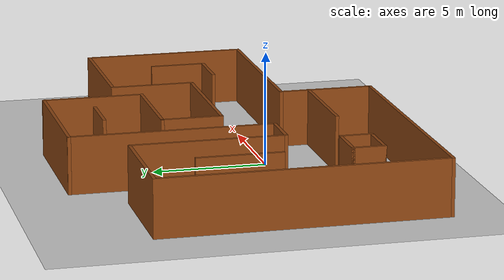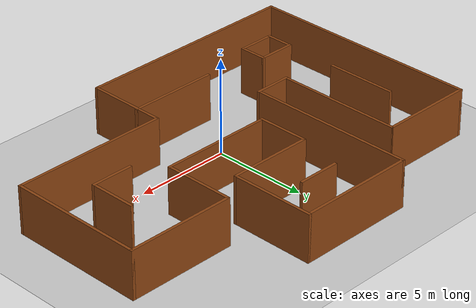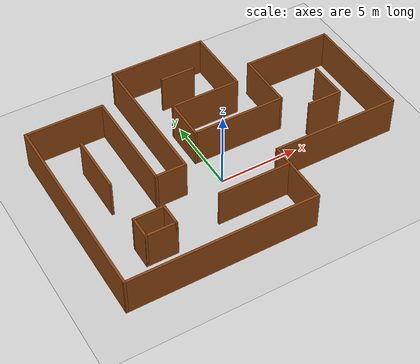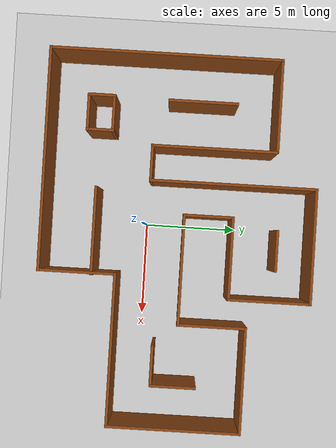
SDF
<sdf version="1.7">
 <world name="default">
  <light name="sun" type="directional">
   <pose>0 0 10 0 -0 0</pose>
   <diffuse>0.8 0.8 0.8 1</diffuse>
   <specular>0.2 0.2 0.2 1</specular>
   <attenuation>
    <range>1000</range>
    <constant>0.9</constant>
    <linear>0.01</linear>
    <quadratic>0.001</quadratic>
   </attenuation>
   <direction>-0.5 0.1 -0.9</direction>
   <spot><inner_angle>0</inner_angle><outer_angle>0</outer_angle><falloff>0</falloff></spot>
  </light>
  <model name="ground_plane">
   <static>true</static>
   <link name="link">
    <collision name="collision">
     <geometry><plane><normal>0 0 1</normal><size>100 100</size></plane></geometry>
    </collision>
    <visual name="visual">
     <geometry><plane><normal>0 0 1</normal><size>100 100</size></plane></geometry>
     <material>
      <ambient>0.7 0.7 0.7 1</ambient>
      <diffuse>0.8 0.8 0.8 1</diffuse>
      <specular>0.3 0.3 0.3 1</specular>
     </material>
    </visual>
   </link>
  </model>
  <gravity>0 0 -9.8</gravity>
  <magnetic_field>6e-06 2.3e-05 -4.2e-05</magnetic_field>
  <atmosphere type="adiabatic"/>
  <physics type="ode">
   <max_step_size>0.001</max_step_size>
   <real_time_factor>1</real_time_factor>
   <real_time_update_rate>1000</real_time_update_rate>
  </physics>
  <scene><ambient>0.4 0.4 0.4 1</ambient><background>0.7 0.7 0.7 1</background><shadows>1</shadows></scene>
  <audio><device>default</device></audio>
  <spherical_coordinates>
   <surface_model>EARTH_WGS84</surface_model>
   <latitude_deg>0</latitude_deg>
   <longitude_deg>0</longitude_deg>
   <elevation>0</elevation>
   <heading_deg>0</heading_deg>
  </spherical_coordinates>
  <model name="Untitled">
   <pose>0.885612 1.75946 0 0 -0 0</pose>
   <link name="Wall_1">
    <collision name="Wall_1_Collision">
     <geometry><box><size>6.25 0.15 2.5</size></box></geometry>
     <pose>0 0 1.25 0 -0 0</pose>
    </collision>
    <visual name="Wall_1_Visual">
     <pose>0 0 1.25 0 -0 0</pose>
     <geometry><box><size>6.25 0.15 2.5</size></box></geometry>
     <material>
      <ambient>0.55 0.27 0.07 1</ambient>
      <diffuse>0.55 0.27 0.07 1</diffuse>
      <specular>0.2 0.2 0.2 1</specular>
      <emissive>0 0 0 1</emissive>
     </material>
     <meta><layer>0</layer></meta>
    </visual>
    <pose>-0.175 7.275 0 0 -0 0</pose>
   </link>
   <link name="Wall_10">
    <collision name="Wall_10_Collision">
     <geometry><box><size>4.25 0.15 2.5</size></box></geometry>
     <pose>0 0 1.25 0 -0 0</pose>
    </collision>
    <visual name="Wall_10_Visual">
     <pose>0 0 1.25 0 -0 0</pose>
     <geometry><box><size>4.25 0.15 2.5</size></box></geometry>
     <material>
      <ambient>0.55 0.27 0.07 1</ambient>
      <diffuse>0.55 0.27 0.07 1</diffuse>
      <specular>0.2 0.2 0.2 1</specular>
      <emissive>0 0 0 1</emissive>
     </material>
     <meta><layer>0</layer></meta>
    </visual>
    <pose>1.875 -5.225 0 0 -0 -1.5708</pose>
   </link>
   <link name="Wall_11">
    <collision name="Wall_11_Collision">
     <geometry><box><size>12 0.15 2.5</size></box></geometry>
     <pose>0 0 1.25 0 -0 0</pose>
    </collision>
    <visual name="Wall_11_Visual">
     <pose>0 0 1.25 0 -0 0</pose>
     <geometry><box><size>12 0.15 2.5</size></box></geometry>
     <material>
      <ambient>0.55 0.27 0.07 1</ambient>
      <diffuse>0.55 0.27 0.07 1</diffuse>
      <specular>0.2 0.2 0.2 1</specular>
      <emissive>0 0 0 1</emissive>
     </material>
     <meta><layer>0</layer></meta>
    </visual>
    <pose>-4.05 -7.275 0 0 -0 3.14159</pose>
   </link>
   <link name="Wall_12">
    <collision name="Wall_12_Collision">
     <geometry><box><size>12.5 0.15 2.5</size></box></geometry>
     <pose>0 0 1.25 0 -0 0</pose>
    </collision>
    <visual name="Wall_12_Visual">
     <pose>0 0 1.25 0 -0 0</pose>
     <geometry><box><size>12.5 0.15 2.5</size></box></geometry>
     <material>
      <ambient>0.55 0.27 0.07 1</ambient>
      <diffuse>0.55 0.27 0.07 1</diffuse>
      <specular>0.2 0.2 0.2 1</specular>
      <emissive>0 0 0 1</emissive>
     </material>
     <meta><layer>0</layer></meta>
    </visual>
    <pose>-9.975 -1.1 0 0 -0 1.5708</pose>
   </link>
   <link name="Wall_13">
    <collision name="Wall_13_Collision">
     <geometry><box><size>5 0.15 2.5</size></box></geometry>
     <pose>0 0 1.25 0 -0 0</pose>
    </collision>
    <visual name="Wall_13_Visual">
     <pose>0 0 1.25 0 -0 0</pose>
     <geometry><box><size>5 0.15 2.5</size></box></geometry>
     <material>
      <ambient>0.55 0.27 0.07 1</ambient>
      <diffuse>0.55 0.27 0.07 1</diffuse>
      <specular>0.2 0.2 0.2 1</specular>
      <emissive>0 0 0 1</emissive>
     </material>
     <meta><layer>0</layer></meta>
    </visual>
    <pose>-7.55 5.075 0 0 -0 0</pose>
   </link>
   <link name="Wall_17">
    <collision name="Wall_17_Collision">
     <geometry><box><size>9 0.15 2.5</size></box></geometry>
     <pose>0 0 1.25 0 -0 0</pose>
    </collision>
    <visual name="Wall_17_Visual">
     <pose>0 0 1.25 0 -0 0</pose>
     <geometry><box><size>9 0.15 2.5</size></box></geometry>
     <material>
      <ambient>0.55 0.27 0.07 1</ambient>
      <diffuse>0.55 0.27 0.07 1</diffuse>
      <specular>0.2 0.2 0.2 1</specular>
      <emissive>0 0 0 1</emissive>
     </material>
     <meta><layer>0</layer></meta>
    </visual>
    <pose>-3.225 2.85 0 0 -0 -1.5708</pose>
   </link>
   <link name="Wall_18">
    <collision name="Wall_18_Collision">
     <geometry><box><size>2 0.15 2.5</size></box></geometry>
     <pose>0 0 1.25 0 -0 0</pose>
    </collision>
    <visual name="Wall_18_Visual">
     <pose>0 0 1.25 0 -0 0</pose>
     <geometry><box><size>2 0.15 2.5</size></box></geometry>
     <material>
      <ambient>0.55 0.27 0.07 1</ambient>
      <diffuse>0.55 0.27 0.07 1</diffuse>
      <specular>0.2 0.2 0.2 1</specular>
      <emissive>0 0 0 1</emissive>
     </material>
     <meta><layer>0</layer></meta>
    </visual>
    <pose>-4.15 -1.575 0 0 -0 3.14159</pose>
   </link>
   <link name="Wall_19">
    <collision name="Wall_19_Collision">
     <geometry><box><size>6.75 0.15 2.5</size></box></geometry>
     <pose>0 0 1.25 0 -0 0</pose>
    </collision>
    <visual name="Wall_19_Visual">
     <pose>0 0 1.25 0 -0 0</pose>
     <geometry><box><size>6.75 0.15 2.5</size></box></geometry>
     <material>
      <ambient>0.55 0.27 0.07 1</ambient>
      <diffuse>0.55 0.27 0.07 1</diffuse>
      <specular>0.2 0.2 0.2 1</specular>
      <emissive>0 0 0 1</emissive>
     </material>
     <meta><layer>0</layer></meta>
    </visual>
    <pose>-5.075 1.725 0 0 -0 1.5708</pose>
   </link>
   <link name="Wall_2">
    <collision name="Wall_2_Collision">
     <geometry><box><size>4.5 0.15 2.5</size></box></geometry>
     <pose>0 0 1.25 0 -0 0</pose>
    </collision>
    <visual name="Wall_2_Visual">
     <pose>0 0 1.25 0 -0 0</pose>
     <geometry><box><size>4.5 0.15 2.5</size></box></geometry>
     <material>
      <ambient>0.55 0.27 0.07 1</ambient>
      <diffuse>0.55 0.27 0.07 1</diffuse>
      <specular>0.2 0.2 0.2 1</specular>
      <emissive>0 0 0 1</emissive>
     </material>
     <meta><layer>0</layer></meta>
    </visual>
    <pose>2.875 5.1 0 0 -0 -1.5708</pose>
   </link>
   <link name="Wall_21">
    <collision name="Wall_21_Collision">
     <geometry><box><size>4.75 0.15 2.5</size></box></geometry>
     <pose>0 0 1.25 0 -0 0</pose>
    </collision>
    <visual name="Wall_21_Visual">
     <pose>0 0 1.25 0 -0 0</pose>
     <geometry><box><size>4.75 0.15 2.5</size></box></geometry>
     <material>
      <ambient>0.55 0.27 0.07 1</ambient>
      <diffuse>0.55 0.27 0.07 1</diffuse>
      <specular>0.2 0.2 0.2 1</specular>
      <emissive>0 0 0 1</emissive>
     </material>
     <meta><layer>0</layer></meta>
    </visual>
    <pose>-0.368783 -4.44921 0 0 -0 0</pose>
   </link>
   <link name="Wall_23">
    <collision name="Wall_23_Collision">
     <geometry><box><size>3.75 0.15 2.5</size></box></geometry>
     <pose>0 0 1.25 0 -0 0</pose>
    </collision>
    <visual name="Wall_23_Visual">
     <pose>0 0 1.25 0 -0 0</pose>
     <geometry><box><size>3.75 0.15 2.5</size></box></geometry>
     <material>
      <ambient>0.55 0.27 0.07 1</ambient>
      <diffuse>0.55 0.27 0.07 1</diffuse>
      <specular>0.2 0.2 0.2 1</specular>
      <emissive>0 0 0 1</emissive>
     </material>
     <meta><layer>0</layer></meta>
    </visual>
    <pose>-7.52345 0.997621 0 0 -0 -1.5708</pose>
   </link>
   <link name="Wall_25">
    <collision name="Wall_25_Collision">
     <geometry><box><size>1.5 0.15 2.5</size></box></geometry>
     <pose>0 0 1.25 0 -0 0</pose>
    </collision>
    <visual name="Wall_25_Visual">
     <pose>0 0 1.25 0 -0 0</pose>
     <geometry><box><size>1.5 0.15 2.5</size></box></geometry>
     <material>
      <ambient>0.55 0.27 0.07 1</ambient>
      <diffuse>0.55 0.27 0.07 1</diffuse>
      <specular>0.2 0.2 0.2 1</specular>
      <emissive>0 0 0 1</emissive>
     </material>
     <meta><layer>0</layer></meta>
    </visual>
    <pose>-7.59381 -4.42063 0 0 -0 -1.5708</pose>
   </link>
   <link name="Wall_26">
    <collision name="Wall_26_Collision">
     <geometry><box><size>2 0.15 2.5</size></box></geometry>
     <pose>0 0 1.25 0 -0 0</pose>
    </collision>
    <visual name="Wall_26_Visual">
     <pose>0 0 1.25 0 -0 0</pose>
     <geometry><box><size>2 0.15 2.5</size></box></geometry>
     <material>
      <ambient>0.55 0.27 0.07 1</ambient>
      <diffuse>0.55 0.27 0.07 1</diffuse>
      <specular>0.2 0.2 0.2 1</specular>
      <emissive>0 0 0 1</emissive>
     </material>
     <meta><layer>0</layer></meta>
    </visual>
    <pose>-6.66881 -5.09563 0 0 -0 0</pose>
   </link>
   <link name="Wall_27">
    <collision name="Wall_27_Collision">
     <geometry><box><size>1.5 0.15 2.5</size></box></geometry>
     <pose>0 0 1.25 0 -0 0</pose>
    </collision>
    <visual name="Wall_27_Visual">
     <pose>0 0 1.25 0 -0 0</pose>
     <geometry><box><size>1.5 0.15 2.5</size></box></geometry>
     <material>
      <ambient>0.55 0.27 0.07 1</ambient>
      <diffuse>0.55 0.27 0.07 1</diffuse>
      <specular>0.2 0.2 0.2 1</specular>
      <emissive>0 0 0 1</emissive>
     </material>
     <meta><layer>0</layer></meta>
    </visual>
    <pose>-5.74381 -4.42063 0 0 -0 1.5708</pose>
   </link>
   <link name="Wall_28">
    <collision name="Wall_28_Collision">
     <geometry><box><size>2 0.15 2.5</size></box></geometry>
     <pose>0 0 1.25 0 -0 0</pose>
    </collision>
    <visual name="Wall_28_Visual">
     <pose>0 0 1.25 0 -0 0</pose>
     <geometry><box><size>2 0.15 2.5</size></box></geometry>
     <material>
      <ambient>0.55 0.27 0.07 1</ambient>
      <diffuse>0.55 0.27 0.07 1</diffuse>
      <specular>0.2 0.2 0.2 1</specular>
      <emissive>0 0 0 1</emissive>
     </material>
     <meta><layer>0</layer></meta>
    </visual>
    <pose>-6.66881 -3.74563 0 0 -0 3.14159</pose>
   </link>
   <link name="Wall_3">
    <collision name="Wall_3_Collision">
     <geometry><box><size>4.5 0.15 2.5</size></box></geometry>
     <pose>0 0 1.25 0 -0 0</pose>
    </collision>
    <visual name="Wall_3_Visual">
     <pose>0 0 1.25 0 -0 0</pose>
     <geometry><box><size>4.5 0.15 2.5</size></box></geometry>
     <material>
      <ambient>0.55 0.27 0.07 1</ambient>
      <diffuse>0.55 0.27 0.07 1</diffuse>
      <specular>0.2 0.2 0.2 1</specular>
      <emissive>0 0 0 1</emissive>
     </material>
     <meta><layer>0</layer></meta>
    </visual>
    <pose>0.7 2.925 0 0 -0 3.14159</pose>
   </link>
   <link name="Wall_30">
    <collision name="Wall_30_Collision">
     <geometry><box><size>2.5 0.15 2.5</size></box></geometry>
     <pose>0 0 1.25 0 -0 0</pose>
    </collision>
    <visual name="Wall_30_Visual">
     <pose>0 0 1.25 0 -0 0</pose>
     <geometry><box><size>2.5 0.15 2.5</size></box></geometry>
     <material>
      <ambient>0.55 0.27 0.07 1</ambient>
      <diffuse>0.55 0.27 0.07 1</diffuse>
      <specular>0.2 0.2 0.2 1</specular>
      <emissive>0 0 0 1</emissive>
     </material>
     <meta><layer>0</layer></meta>
    </visual>
    <pose>7.68378 0.212245 0 0 -0 -1.5708</pose>
   </link>
   <link name="Wall_31">
    <collision name="Wall_31_Collision">
     <geometry><box><size>2.25 0.15 2.5</size></box></geometry>
     <pose>0 0 1.25 0 -0 0</pose>
    </collision>
    <visual name="Wall_31_Visual">
     <pose>0 0 1.25 0 -0 0</pose>
     <geometry><box><size>2.25 0.15 2.5</size></box></geometry>
     <material>
      <ambient>0.55 0.27 0.07 1</ambient>
      <diffuse>0.55 0.27 0.07 1</diffuse>
      <specular>0.2 0.2 0.2 1</specular>
      <emissive>0 0 0 1</emissive>
     </material>
     <meta><layer>0</layer></meta>
    </visual>
    <pose>6.63378 -0.962755 0 0 -0 3.14159</pose>
   </link>
   <link name="Wall_33">
    <collision name="Wall_33_Collision">
     <geometry><box><size>2.25 0.15 2.5</size></box></geometry>
     <pose>0 0 1.25 0 -0 0</pose>
    </collision>
    <visual name="Wall_33_Visual">
     <pose>0 0 1.25 0 -0 0</pose>
     <geometry><box><size>2.25 0.15 2.5</size></box></geometry>
     <material>
      <ambient>0.55 0.27 0.07 1</ambient>
      <diffuse>0.55 0.27 0.07 1</diffuse>
      <specular>0.2 0.2 0.2 1</specular>
      <emissive>0 0 0 1</emissive>
     </material>
     <meta><layer>0</layer></meta>
    </visual>
    <pose>0.15016 5.32727 0 0 -0 0</pose>
   </link>
   <link name="Wall_4">
    <collision name="Wall_4_Collision">
     <geometry><box><size>2.75 0.15 2.5</size></box></geometry>
     <pose>0 0 1.25 0 -0 0</pose>
    </collision>
    <visual name="Wall_4_Visual">
     <pose>0 0 1.25 0 -0 0</pose>
     <geometry><box><size>2.75 0.15 2.5</size></box></geometry>
     <material>
      <ambient>0.55 0.27 0.07 1</ambient>
      <diffuse>0.55 0.27 0.07 1</diffuse>
      <specular>0.2 0.2 0.2 1</specular>
      <emissive>0 0 0 1</emissive>
     </material>
     <meta><layer>0</layer></meta>
    </visual>
    <pose>-1.475 1.625 0 0 -0 -1.5708</pose>
   </link>
   <link name="Wall_5">
    <collision name="Wall_5_Collision">
     <geometry><box><size>6 0.15 2.5</size></box></geometry>
     <pose>0 0 1.25 0 -0 0</pose>
    </collision>
    <visual name="Wall_5_Visual">
     <pose>0 0 1.25 0 -0 0</pose>
     <geometry><box><size>6 0.15 2.5</size></box></geometry>
     <material>
      <ambient>0.55 0.27 0.07 1</ambient>
      <diffuse>0.55 0.27 0.07 1</diffuse>
      <specular>0.2 0.2 0.2 1</specular>
      <emissive>0 0 0 1</emissive>
     </material>
     <meta><layer>0</layer></meta>
    </visual>
    <pose>1.45 0.325 0 0 -0 0</pose>
   </link>
   <link name="Wall_6">
    <collision name="Wall_6_Collision">
     <geometry><box><size>3.75 0.15 2.5</size></box></geometry>
     <pose>0 0 1.25 0 -0 0</pose>
    </collision>
    <visual name="Wall_6_Visual">
     <pose>0 0 1.25 0 -0 0</pose>
     <geometry><box><size>3.75 0.15 2.5</size></box></geometry>
     <material>
      <ambient>0.55 0.27 0.07 1</ambient>
      <diffuse>0.55 0.27 0.07 1</diffuse>
      <specular>0.2 0.2 0.2 1</specular>
      <emissive>0 0 0 1</emissive>
     </material>
     <meta><layer>0</layer></meta>
    </visual>
    <pose>4.375 2.125 0 0 -0 1.5708</pose>
   </link>
   <link name="Wall_7">
    <collision name="Wall_7_Collision">
     <geometry><box><size>5.75 0.15 2.5</size></box></geometry>
     <pose>0 0 1.25 0 -0 0</pose>
    </collision>
    <visual name="Wall_7_Visual">
     <pose>0 0 1.25 0 -0 0</pose>
     <geometry><box><size>5.75 0.15 2.5</size></box></geometry>
     <material>
      <ambient>0.55 0.27 0.07 1</ambient>
      <diffuse>0.55 0.27 0.07 1</diffuse>
      <specular>0.2 0.2 0.2 1</specular>
      <emissive>0 0 0 1</emissive>
     </material>
     <meta><layer>0</layer></meta>
    </visual>
    <pose>7.175 3.925 0 0 -0 0</pose>
   </link>
   <link name="Wall_8">
    <collision name="Wall_8_Collision">
     <geometry><box><size>7.25 0.15 2.5</size></box></geometry>
     <pose>0 0 1.25 0 -0 0</pose>
    </collision>
    <visual name="Wall_8_Visual">
     <pose>0 0 1.25 0 -0 0</pose>
     <geometry><box><size>7.25 0.15 2.5</size></box></geometry>
     <material>
      <ambient>0.55 0.27 0.07 1</ambient>
      <diffuse>0.55 0.27 0.07 1</diffuse>
      <specular>0.2 0.2 0.2 1</specular>
      <emissive>0 0 0 1</emissive>
     </material>
     <meta><layer>0</layer></meta>
    </visual>
    <pose>9.975 0.375 0 0 -0 -1.5708</pose>
   </link>
   <link name="Wall_9">
    <collision name="Wall_9_Collision">
     <geometry><box><size>8.25 0.15 2.5</size></box></geometry>
     <pose>0 0 1.25 0 -0 0</pose>
    </collision>
    <visual name="Wall_9_Visual">
     <pose>0 0 1.25 0 -0 0</pose>
     <geometry><box><size>8.25 0.15 2.5</size></box></geometry>
     <material>
      <ambient>0.55 0.27 0.07 1</ambient>
      <diffuse>0.55 0.27 0.07 1</diffuse>
      <specular>0.2 0.2 0.2 1</specular>
      <emissive>0 0 0 1</emissive>
     </material>
     <meta><layer>0</layer></meta>
    </visual>
    <pose>5.925 -3.175 0 0 -0 3.14159</pose>
   </link>
   <static>1</static>
  </model>
 </world>
</sdf>
